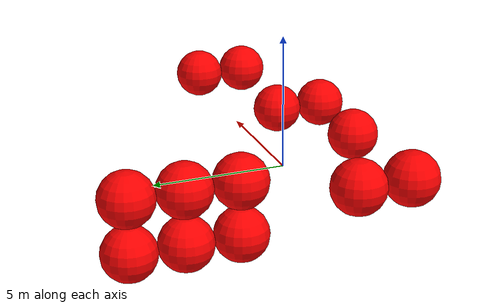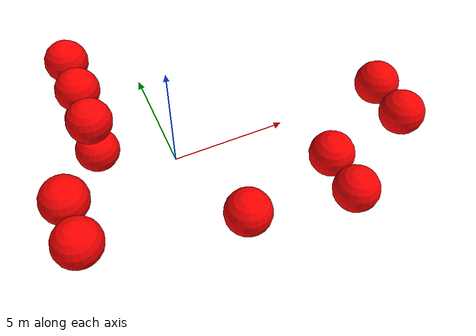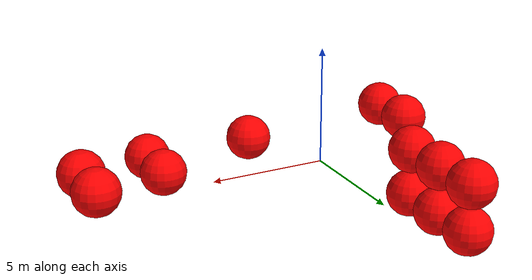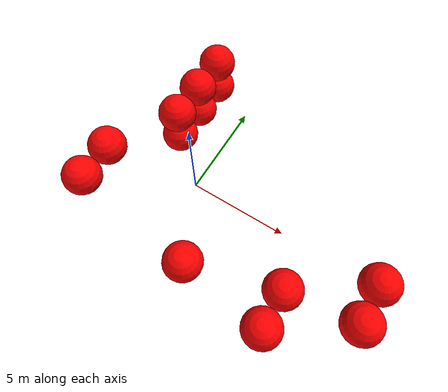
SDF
<sdf version="1.8">
 <world name="3d_world">
  <model name="obstacle_9" canonical_link="obstacle">
   <static>true</static>
   <pose relative_to="world">-2.85 2.68 -1.00 0 0 0</pose>
   <link name="obstacle">
    <pose relative_to="__model__">0.0 0 0.0 0 0 0</pose>
    <visual name="visual">
     <geometry><sphere><radius>1.00</radius></sphere></geometry>
     <material>
      <ambient>1.0 0.0 0.0 1</ambient>
      <diffuse>1.0 0.0 0.0 1</diffuse>
      <specular>1.0 0.0 0.0 1</specular>
     </material>
    </visual>
    <collision name="collision"><geometry><sphere><radius>1.00</radius></sphere></geometry></collision>
    <enable_gravity>false</enable_gravity>
   </link>
   <plugin filename="ignition-gazebo-velocity-control-system" name="ignition::gazebo::systems::VelocityControl">
    <initial_linear>0.00 0.00 0.00</initial_linear>
    <initial_angular>0 0 0</initial_angular>
   </plugin>
   <plugin filename="ignition-gazebo-odometry-publisher-system" name="ignition::gazebo::systems::OdometryPublisher">
    <dimensions>3</dimensions>
   </plugin>
  </model>
  <model name="obstacle_10" canonical_link="obstacle">
   <static>true</static>
   <pose relative_to="world">-2.85 4.68 -1.00 0 0 0</pose>
   <link name="obstacle">
    <pose relative_to="__model__">0.0 0 0.0 0 0 0</pose>
    <visual name="visual">
     <geometry><sphere><radius>1.00</radius></sphere></geometry>
     <material>
      <ambient>1.0 0.0 0.0 1</ambient>
      <diffuse>1.0 0.0 0.0 1</diffuse>
      <specular>1.0 0.0 0.0 1</specular>
     </material>
    </visual>
    <collision name="collision"><geometry><sphere><radius>1.00</radius></sphere></geometry></collision>
    <enable_gravity>false</enable_gravity>
   </link>
   <plugin filename="ignition-gazebo-velocity-control-system" name="ignition::gazebo::systems::VelocityControl">
    <initial_linear>0.00 0.00 0.00</initial_linear>
    <initial_angular>0 0 0</initial_angular>
   </plugin>
   <plugin filename="ignition-gazebo-odometry-publisher-system" name="ignition::gazebo::systems::OdometryPublisher">
    <dimensions>3</dimensions>
   </plugin>
  </model>
  <model name="obstacle_11" canonical_link="obstacle">
   <static>true</static>
   <pose relative_to="world">-2.85 6.68 -1.00 0 0 0</pose>
   <link name="obstacle">
    <pose relative_to="__model__">0.0 0 0.0 0 0 0</pose>
    <visual name="visual">
     <geometry><sphere><radius>1.00</radius></sphere></geometry>
     <material>
      <ambient>1.0 0.0 0.0 1</ambient>
      <diffuse>1.0 0.0 0.0 1</diffuse>
      <specular>1.0 0.0 0.0 1</specular>
     </material>
    </visual>
    <collision name="collision"><geometry><sphere><radius>1.00</radius></sphere></geometry></collision>
    <enable_gravity>false</enable_gravity>
   </link>
   <plugin filename="ignition-gazebo-velocity-control-system" name="ignition::gazebo::systems::VelocityControl">
    <initial_linear>0.00 0.00 0.00</initial_linear>
    <initial_angular>0 0 0</initial_angular>
   </plugin>
   <plugin filename="ignition-gazebo-odometry-publisher-system" name="ignition::gazebo::systems::OdometryPublisher">
    <dimensions>3</dimensions>
   </plugin>
  </model>
  <model name="obstacle_12" canonical_link="obstacle">
   <static>true</static>
   <pose relative_to="world">-2.85 2.68 1.00 0 0 0</pose>
   <link name="obstacle">
    <pose relative_to="__model__">0.0 0 0.0 0 0 0</pose>
    <visual name="visual">
     <geometry><sphere><radius>1.00</radius></sphere></geometry>
     <material>
      <ambient>1.0 0.0 0.0 1</ambient>
      <diffuse>1.0 0.0 0.0 1</diffuse>
      <specular>1.0 0.0 0.0 1</specular>
     </material>
    </visual>
    <collision name="collision"><geometry><sphere><radius>1.00</radius></sphere></geometry></collision>
    <enable_gravity>false</enable_gravity>
   </link>
   <plugin filename="ignition-gazebo-velocity-control-system" name="ignition::gazebo::systems::VelocityControl">
    <initial_linear>0.00 0.00 0.00</initial_linear>
    <initial_angular>0 0 0</initial_angular>
   </plugin>
   <plugin filename="ignition-gazebo-odometry-publisher-system" name="ignition::gazebo::systems::OdometryPublisher">
    <dimensions>3</dimensions>
   </plugin>
  </model>
  <model name="obstacle_13" canonical_link="obstacle">
   <static>true</static>
   <pose relative_to="world">-2.85 4.68 1.00 0 0 0</pose>
   <link name="obstacle">
    <pose relative_to="__model__">0.0 0 0.0 0 0 0</pose>
    <visual name="visual">
     <geometry><sphere><radius>1.00</radius></sphere></geometry>
     <material>
      <ambient>1.0 0.0 0.0 1</ambient>
      <diffuse>1.0 0.0 0.0 1</diffuse>
      <specular>1.0 0.0 0.0 1</specular>
     </material>
    </visual>
    <collision name="collision"><geometry><sphere><radius>1.00</radius></sphere></geometry></collision>
    <enable_gravity>false</enable_gravity>
   </link>
   <plugin filename="ignition-gazebo-velocity-control-system" name="ignition::gazebo::systems::VelocityControl">
    <initial_linear>0.00 0.00 0.00</initial_linear>
    <initial_angular>0 0 0</initial_angular>
   </plugin>
   <plugin filename="ignition-gazebo-odometry-publisher-system" name="ignition::gazebo::systems::OdometryPublisher">
    <dimensions>3</dimensions>
   </plugin>
  </model>
  <model name="obstacle_14" canonical_link="obstacle">
   <static>true</static>
   <pose relative_to="world">-2.85 6.68 1.00 0 0 0</pose>
   <link name="obstacle">
    <pose relative_to="__model__">0.0 0 0.0 0 0 0</pose>
    <visual name="visual">
     <geometry><sphere><radius>1.00</radius></sphere></geometry>
     <material>
      <ambient>1.0 0.0 0.0 1</ambient>
      <diffuse>1.0 0.0 0.0 1</diffuse>
      <specular>1.0 0.0 0.0 1</specular>
     </material>
    </visual>
    <collision name="collision"><geometry><sphere><radius>1.00</radius></sphere></geometry></collision>
    <enable_gravity>false</enable_gravity>
   </link>
   <plugin filename="ignition-gazebo-velocity-control-system" name="ignition::gazebo::systems::VelocityControl">
    <initial_linear>0.00 0.00 0.00</initial_linear>
    <initial_angular>0 0 0</initial_angular>
   </plugin>
   <plugin filename="ignition-gazebo-odometry-publisher-system" name="ignition::gazebo::systems::OdometryPublisher">
    <dimensions>3</dimensions>
   </plugin>
  </model>
  <model name="obstacle_19" canonical_link="obstacle">
   <static>true</static>
   <pose relative_to="world">-4.77 -2.82 1.00 0 0 0</pose>
   <link name="obstacle">
    <pose relative_to="__model__">0.0 0 0.0 0 0 0</pose>
    <visual name="visual">
     <geometry><sphere><radius>1.00</radius></sphere></geometry>
     <material>
      <ambient>1.0 0.0 0.0 1</ambient>
      <diffuse>1.0 0.0 0.0 1</diffuse>
      <specular>1.0 0.0 0.0 1</specular>
     </material>
    </visual>
    <collision name="collision"><geometry><sphere><radius>1.00</radius></sphere></geometry></collision>
    <enable_gravity>false</enable_gravity>
   </link>
   <plugin filename="ignition-gazebo-velocity-control-system" name="ignition::gazebo::systems::VelocityControl">
    <initial_linear>0.00 0.00 0.00</initial_linear>
    <initial_angular>0 0 0</initial_angular>
   </plugin>
   <plugin filename="ignition-gazebo-odometry-publisher-system" name="ignition::gazebo::systems::OdometryPublisher">
    <dimensions>3</dimensions>
   </plugin>
  </model>
  <model name="obstacle_20" canonical_link="obstacle">
   <static>true</static>
   <pose relative_to="world">-4.77 -0.82 1.00 0 0 0</pose>
   <link name="obstacle">
    <pose relative_to="__model__">0.0 0 0.0 0 0 0</pose>
    <visual name="visual">
     <geometry><sphere><radius>1.00</radius></sphere></geometry>
     <material>
      <ambient>1.0 0.0 0.0 1</ambient>
      <diffuse>1.0 0.0 0.0 1</diffuse>
      <specular>1.0 0.0 0.0 1</specular>
     </material>
    </visual>
    <collision name="collision"><geometry><sphere><radius>1.00</radius></sphere></geometry></collision>
    <enable_gravity>false</enable_gravity>
   </link>
   <plugin filename="ignition-gazebo-velocity-control-system" name="ignition::gazebo::systems::VelocityControl">
    <initial_linear>0.00 0.00 0.00</initial_linear>
    <initial_angular>0 0 0</initial_angular>
   </plugin>
   <plugin filename="ignition-gazebo-odometry-publisher-system" name="ignition::gazebo::systems::OdometryPublisher">
    <dimensions>3</dimensions>
   </plugin>
  </model>
  <model name="obstacle_21" canonical_link="obstacle">
   <static>false</static>
   <pose relative_to="world">6.32 -4.30 -0.18 0 0 0</pose>
   <link name="obstacle">
    <pose relative_to="__model__">0.0 0 0.0 0 0 0</pose>
    <visual name="visual">
     <geometry><sphere><radius>1.00</radius></sphere></geometry>
     <material>
      <ambient>1.0 0.0 0.0 1</ambient>
      <diffuse>1.0 0.0 0.0 1</diffuse>
      <specular>1.0 0.0 0.0 1</specular>
     </material>
    </visual>
    <collision name="collision"><geometry><sphere><radius>1.00</radius></sphere></geometry></collision>
    <enable_gravity>false</enable_gravity>
   </link>
   <plugin filename="ignition-gazebo-velocity-control-system" name="ignition::gazebo::systems::VelocityControl">
    <initial_linear>0.00 1.55 0.17</initial_linear>
    <initial_angular>0 0 0</initial_angular>
   </plugin>
   <plugin filename="ignition-gazebo-odometry-publisher-system" name="ignition::gazebo::systems::OdometryPublisher">
    <dimensions>3</dimensions>
   </plugin>
  </model>
  <model name="obstacle_22" canonical_link="obstacle">
   <static>false</static>
   <pose relative_to="world">6.32 -2.30 -0.18 0 0 0</pose>
   <link name="obstacle">
    <pose relative_to="__model__">0.0 0 0.0 0 0 0</pose>
    <visual name="visual">
     <geometry><sphere><radius>1.00</radius></sphere></geometry>
     <material>
      <ambient>1.0 0.0 0.0 1</ambient>
      <diffuse>1.0 0.0 0.0 1</diffuse>
      <specular>1.0 0.0 0.0 1</specular>
     </material>
    </visual>
    <collision name="collision"><geometry><sphere><radius>1.00</radius></sphere></geometry></collision>
    <enable_gravity>false</enable_gravity>
   </link>
   <plugin filename="ignition-gazebo-velocity-control-system" name="ignition::gazebo::systems::VelocityControl">
    <initial_linear>0.00 1.55 0.17</initial_linear>
    <initial_angular>0 0 0</initial_angular>
   </plugin>
   <plugin filename="ignition-gazebo-odometry-publisher-system" name="ignition::gazebo::systems::OdometryPublisher">
    <dimensions>3</dimensions>
   </plugin>
  </model>
  <model name="obstacle_23" canonical_link="obstacle">
   <static>false</static>
   <pose relative_to="world">1.68 -3.68 0.13 0 0 0</pose>
   <link name="obstacle">
    <pose relative_to="__model__">0.0 0 0.0 0 0 0</pose>
    <visual name="visual">
     <geometry><sphere><radius>1.00</radius></sphere></geometry>
     <material>
      <ambient>1.0 0.0 0.0 1</ambient>
      <diffuse>1.0 0.0 0.0 1</diffuse>
      <specular>1.0 0.0 0.0 1</specular>
     </material>
    </visual>
    <collision name="collision"><geometry><sphere><radius>1.00</radius></sphere></geometry></collision>
    <enable_gravity>false</enable_gravity>
   </link>
   <plugin filename="ignition-gazebo-velocity-control-system" name="ignition::gazebo::systems::VelocityControl">
    <initial_linear>0.00 1.69 -0.07</initial_linear>
    <initial_angular>0 0 0</initial_angular>
   </plugin>
   <plugin filename="ignition-gazebo-odometry-publisher-system" name="ignition::gazebo::systems::OdometryPublisher">
    <dimensions>3</dimensions>
   </plugin>
  </model>
  <model name="obstacle_24" canonical_link="obstacle">
   <static>false</static>
   <pose relative_to="world">9.93 -2.00 0.56 0 0 0</pose>
   <link name="obstacle">
    <pose relative_to="__model__">0.0 0 0.0 0 0 0</pose>
    <visual name="visual">
     <geometry><sphere><radius>1.00</radius></sphere></geometry>
     <material>
      <ambient>1.0 0.0 0.0 1</ambient>
      <diffuse>1.0 0.0 0.0 1</diffuse>
      <specular>1.0 0.0 0.0 1</specular>
     </material>
    </visual>
    <collision name="collision"><geometry><sphere><radius>1.00</radius></sphere></geometry></collision>
    <enable_gravity>false</enable_gravity>
   </link>
   <plugin filename="ignition-gazebo-velocity-control-system" name="ignition::gazebo::systems::VelocityControl">
    <initial_linear>0.00 1.23 -1.10</initial_linear>
    <initial_angular>0 0 0</initial_angular>
   </plugin>
   <plugin filename="ignition-gazebo-odometry-publisher-system" name="ignition::gazebo::systems::OdometryPublisher">
    <dimensions>3</dimensions>
   </plugin>
  </model>
  <model name="obstacle_25" canonical_link="obstacle">
   <static>false</static>
   <pose relative_to="world">9.93 0.00 0.56 0 0 0</pose>
   <link name="obstacle">
    <pose relative_to="__model__">0.0 0 0.0 0 0 0</pose>
    <visual name="visual">
     <geometry><sphere><radius>1.00</radius></sphere></geometry>
     <material>
      <ambient>1.0 0.0 0.0 1</ambient>
      <diffuse>1.0 0.0 0.0 1</diffuse>
      <specular>1.0 0.0 0.0 1</specular>
     </material>
    </visual>
    <collision name="collision"><geometry><sphere><radius>1.00</radius></sphere></geometry></collision>
    <enable_gravity>false</enable_gravity>
   </link>
   <plugin filename="ignition-gazebo-velocity-control-system" name="ignition::gazebo::systems::VelocityControl">
    <initial_linear>0.00 1.23 -1.10</initial_linear>
    <initial_angular>0 0 0</initial_angular>
   </plugin>
   <plugin filename="ignition-gazebo-odometry-publisher-system" name="ignition::gazebo::systems::OdometryPublisher">
    <dimensions>3</dimensions>
   </plugin>
  </model>
 </world>
</sdf>
